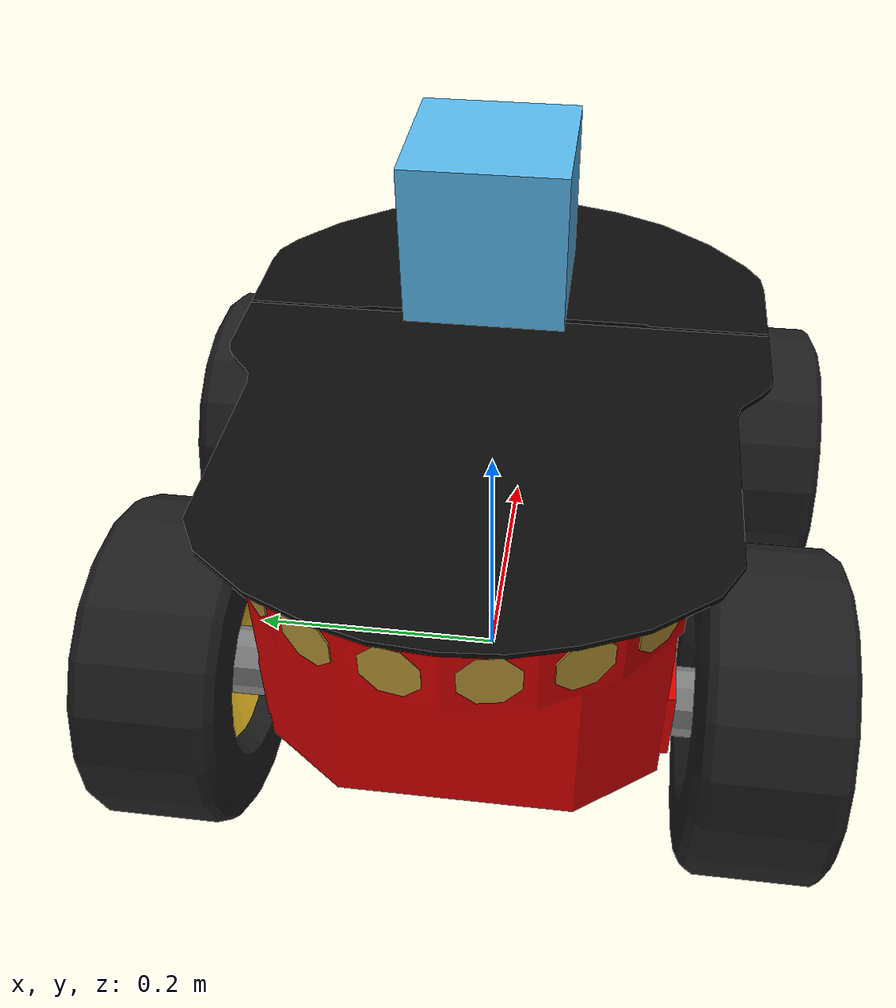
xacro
<?xml version="1.0"?>

<robot xmlns:sensor="http://playerstage.sourceforge.net/gazebo/xmlschema/#sensor"
       xmlns:controller="http://playerstage.sourceforge.net/gazebo/xmlschema/#controller"
       xmlns:interface="http://playerstage.sourceforge.net/gazebo/xmlschema/#interface"
       xmlns:xacro="http://ros.org/wiki/xacro"
name="pioneer3at">

<xacro:include filename="$(find p2os_urdf)/defs/pioneer3at_body.xacro"/>

<xacro:p3at_front suffix="left" reflect="1"/>
<xacro:p3at_front suffix="right" reflect="-1"/>
<xacro:p3at_back suffix="left" reflect="1"/>
<xacro:p3at_back suffix="right" reflect="-1"/>
<xacro:p3at_gazebo_ext/>

	<xacro:property name="cameraSize" value="0.05"/>
	<xacro:property name="cameraMass" value="0.1"/>

	<joint name="fixed_camera" type="fixed">
	  <parent link="base_link"/>
	  <child link="cam"/>
          <origin rpy="0 0 0" xyz="0.25 0 0.3"/>
	</joint>

	<link name="cam">
	  <collision>
	    <origin xyz="0 0 0" rpy="0 0 0"/>
	    <geometry>
	      <box size="${cameraSize} ${cameraSize} ${cameraSize}"/>
	    </geometry>
	  </collision>

	  <visual>
	    <origin xyz="0 0 0" rpy="0 0 0"/>
	    <geometry>
	      <box size="${cameraSize} ${cameraSize} ${cameraSize}"/>
	    </geometry>
	    <material name="blue"/>
	  </visual>

	  <inertial>
	    <mass value="${cameraMass}" />
	    <origin xyz="0 0 0" rpy="0 0 0"/>
			<inertia ixx="0.012411765597" ixy="0" ixz="0"
         iyy="0.015218160428" iyz="0" izz="0.011763977943"/>
	  </inertial>
	</link>

	<gazebo reference="cam">
	  <material>Gazebo/Blue</material>
	  <sensor type="camera" name="cam">
	    <update_rate>30.0</update_rate>
	    <camera name="head">
	      <horizontal_fov>2</horizontal_fov>
	      <vertical_fov>1</vertical_fov>
	      <image>
		<width>1200</width>
		<height>600</height>
		<format>R8G8B8</format>
	      </image>
	      <clip>
		<near>0.02</near>
		<far>300</far>
	      </clip>
	    </camera>
	    <plugin name="camera_controller" filename="libgazebo_ros_camera.so">
	      <alwaysOn>true</alwaysOn>
	      <updateRate>0.0</updateRate>
	      <cameraName>pioneer3at/camera1</cameraName>
	      <imageTopicName>image_raw</imageTopicName>
	      <cameraInfoTopicName>camera_info</cameraInfoTopicName>
	      <frameName>camera_link</frameName>
	      <hackBaseline>0.07</hackBaseline>
	      <distortionK1>0.0</distortionK1>
	      <distortionK2>0.0</distortionK2>
	      <distortionK3>0.0</distortionK3>
	      <distortionT1>0.0</distortionT1>
	      <distortionT2>0.0</distortionT2>
	    </plugin>
	  </sensor>
	 </gazebo>

	<joint name="ir_front_joint" type="fixed">
    <axis xyz="0 1 0" />
    <origin rpy="0 0 0" xyz="0 0 0.4" />
    <parent link="base_link"/>
    <child link="base_ir_front"/>
	</joint>
	<link name="base_ir_front">
	    <collision>
	      <origin xyz="0 0 0" rpy="0 0 0"/>
	      <geometry>
	        <box size="0.01 0.01 0.01"/>
	      </geometry>
	    </collision>
	    <visual>
	      <origin xyz="0 0 0" rpy="0 0 0"/>
	      <geometry>
	        <box size="0.1 0.1 0.1"/>
	      </geometry>
	    </visual>
	    <inertial>
	      <mass value="1e-5" />
	      <origin xyz="0 0 0" rpy="0 0 0"/>
	      <inertia ixx="1e-6" ixy="0" ixz="0" iyy="1e-6" iyz="0"      izz="1e-6" />
	    </inertial>
	</link>

	<gazebo reference="base_ir_front">
   <sensor type="ray" name="TeraRanger">
      <pose>0 0 0 0 0 0</pose>
      <visualize>true</visualize>
      <update_rate>50</update_rate>
      <ray>
         <scan>
            <horizontal>
               <samples>10</samples>
               <resolution>1</resolution>
               <min_angle>-0.14835</min_angle>
               <max_angle>0.14835</max_angle>
            </horizontal>
            <vertical>
               <samples>10</samples>
               <resolution>1</resolution>
               <min_angle>-0.14835</min_angle>
               <max_angle>0.14835</max_angle>
            </vertical>
         </scan>
         <range>
            <min>0.01</min>
            <max>2</max>
            <resolution>0.02</resolution>
         </range>
      </ray>
      <plugin filename="libgazebo_ros_range.so" name="gazebo_ros_range">
         <gaussianNoise>0.005</gaussianNoise>
         <alwaysOn>true</alwaysOn>
         <updateRate>50</updateRate>
         <topicName>sensor/ir_front</topicName>
         <frameName>base_ir_front</frameName>
         <radiation>INFRARED</radiation>
         <fov>0.2967</fov>
      </plugin>
   </sensor>
   </gazebo>

</robot>

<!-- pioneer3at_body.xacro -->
<robot xmlns:sensor="http://playerstage.sourceforge.net/gazebo/xmlschema/#sensor"
       xmlns:controller="http://playerstage.sourceforge.net/gazebo/xmlschema/#controller"
       xmlns:interface="http://playerstage.sourceforge.net/gazebo/xmlschema/#interface"
       xmlns:xacro="http://ros.org/wiki/xacro"
>

<!-- Chassis -->
	<link name="base_link">
		<inertial>
			<mass value="10.0"/>
			<origin xyz="0 0 0.177"/>
			<inertia ixx="0.3338" ixy="0.0" ixz="0.0"
				 iyy="0.4783" iyz="0.0"
				 izz="0.3338"/>
		</inertial>
		<visual>
			<origin xyz="0 0 0.177" rpy="0 0 0"/>
			<geometry name="pioneer_geom">
				<mesh filename="package://p2os_urdf/meshes/p3at_meshes/chassis.stl"/>
			</geometry>
			<material name="ChassisRed">
				<color rgba="0.851 0.0 0.0 1.0"/>
			</material>
		</visual>
		<collision>
			<origin xyz="0 0 0.177" rpy="0 0 0"/>
				<geometry>
					<mesh filename="package://p2os_urdf/meshes/p3at_meshes/chassis.stl"/>
				</geometry>
		</collision>
	</link>
	<gazebo reference="base_link">
		<material value="Gazebo/Red"/>
	</gazebo>

<!-- Top -->
	<link name="top_plate">
		<inertial>
			<mass value="0.1"/>
			<origin xyz="-0.025 0 -0.223"/>
			<inertia ixx="1.0" ixy="0.0" ixz="0.0"
				 iyy="1.0" iyz="0.0"
 				izz="1.0"/>
		</inertial>
		<visual>
			<origin xyz="0 0 0" rpy="0 0 0"/>
			<geometry name="pioneer_geom">
				<mesh filename="package://p2os_urdf/meshes/p3at_meshes/top.stl"/>
			</geometry>
			<material name="TopBlack">
					<color rgba="0.038 0.038 0.038 1.0"/>
			</material>
		</visual>
		<collision>
			<origin xyz="0 0 0" rpy="0 0 0"/>
			<geometry>
				<box size="0 0 0"/>
			</geometry>
		</collision>
	</link>
	<gazebo reference="top_plate">
		<material value="Gazebo/Black"/>
	</gazebo>

	<joint name="base_top_joint" type="fixed">
		<origin xyz="0.003 0 0.274" rpy="0 0 0"/>
		<parent link="base_link"/>
		<child link="top_plate"/>
	</joint>
<!-- Front + Back Sonar -->
	<link name="front_sonar">
		<inertial>
			<mass value="0.1"/>
			<origin xyz="0 0 0"/>
			<inertia ixx="1.0" ixy="0.0" ixz="0.0"
				 iyy="1.0" iyz="0.0" izz="1.0"/>
		</inertial>
		<visual>
			<origin xyz="0 0 0" rpy="0 0 0"/>
			<geometry name="pioneer_geom">
				<mesh filename="package://p2os_urdf/meshes/p3at_meshes/front_sonar.stl"/>
			</geometry>
			<material name="SonarYellow">
				<color rgba="0.715 0.583 0.210 1.0"/>
			</material>
		</visual>
		<collision>
			<origin xyz="0 0 0" rpy="0 0 0"/>
			<geometry>
				<box size="0 0 0"/>
			</geometry>
		</collision>
	</link>
	<gazebo reference="front_sonar">
		<material value="Gazebo/Yellow"/>
	</gazebo>

	<joint name="base_front_joint" type="fixed">
		<origin xyz="0.193 0 0.25" rpy="0 0 0"/>
		<parent link="base_link"/>
		<child link="front_sonar"/>
	</joint>

	<link name="back_sonar">
		<inertial>
			<mass value="0.1"/>
			<origin xyz="0 0 0"/>
			<inertia ixx="1.0" ixy="0.0" ixz="0.0"
				 iyy="1.0" iyz="0.0" izz="1.0"/>
		</inertial>
		<visual>
			<origin xyz="0 0 0" rpy="0 0 0"/>
			<geometry name="pioneer_geom">
				<mesh filename="package://p2os_urdf/meshes/p3at_meshes/back_sonar.stl"/>
			</geometry>
			<material name="SonarYellow">
				<color rgba="0.715 0.583 0.210 1.0"/>
			</material>
		</visual>
		<collision>
			<origin xyz="0 0 0" rpy="0 0 0"/>
			<geometry>
				<box size="0 0 0"/>
			</geometry>
		</collision>
	</link>
	<gazebo reference="back_sonar">
		<material value="Gazebo/Yellow"/>
	</gazebo>

	<joint name="base_back_joint" type="fixed">
		<origin xyz="-0.187 0 0.247" rpy="0 0 0"/>
		<parent link="base_link"/>
		<child link="back_sonar"/>
	</joint>

<!-- Front Axles + Wheels + Hubcaps -->
<xacro:macro name="p3at_front" params="suffix reflect">
	<link name="p3at_front_${suffix}_axle">
		<inertial>
			<mass value="0.1"/>
			<origin xyz="0 0 0"/>
			<inertia ixx="1.0" ixy="0.0" ixz="0.0"
				 iyy="1.0" iyz="0.0" izz="1.0"/>
  	 	</inertial>
	<visual>
		<origin xyz="0 0 0" rpy="0 0 0"/>
		<geometry name="pioneer_geom">
			<mesh filename="package://p2os_urdf/meshes/p3at_meshes/axle.stl"/>
		</geometry>
		<material name="AxleGrey">
			<color rgba="0.5 0.5 0.5 1"/>
		</material>
	</visual>
	<collision>
		<origin xyz="0 0 0" rpy="0 0 0"/>
		<geometry>
			<box size="0 0 0"/>
		</geometry>
	</collision>
	</link>
	<gazebo reference="p3at_front_${suffix}_axle">
		<material value="Gazebo/Grey"/>
	</gazebo>

	<joint name="base_front_${suffix}_axle_joint" type="fixed">
		<origin xyz="0.135 ${reflect*0.156} 0.111" rpy="0 0 0"/>
		<parent link="base_link"/>
		<child link="p3at_front_${suffix}_axle"/>
	</joint>

	<link name="p3at_front_${suffix}_hub">
		<inertial>
			<mass value="0.1"/>
			<origin xyz="0 0 0"/>
			<inertia ixx="1.0" ixy="0.0" ixz="0.0"
				 iyy="1.0" iyz="0.0" izz="1.0"/>
  	 	</inertial>
	<visual>
		<origin xyz="0 0 0" rpy="0 0 0"/>
		<geometry name="pioneer_geom">
			<mesh filename="package://p2os_urdf/meshes/p3at_meshes/${suffix}_hubcap.stl"/>
		</geometry>
		<material name="HubcapYellow">
			<color rgba="1.0 0.811 0.151 1.0"/>
		</material>
	</visual>
	<collision>
		<origin xyz="0 0 0" rpy="0 0 0"/>
		<geometry>
			<box size="0 0 0"/>
		</geometry>
	</collision>
	</link>
	<gazebo reference="p3at_front_${suffix}_hub">
		<material value="Gazebo/Yellow"/>
	</gazebo>

	<joint name="base_front_${suffix}_hub_joint" type="fixed">
		<origin xyz="0 ${reflect*0.041} 0" rpy="0 0 0"/>
		<parent link="p3at_front_${suffix}_axle"/>
		<child link="p3at_front_${suffix}_hub"/>
	</joint>

	<link name="p3at_front_${suffix}_wheel">
		<inertial>
			<mass value="0.5"/>
			<origin xyz="0 0 0"/>
			<inertia ixx="0.012411765597" ixy="0" ixz="0"
         iyy="0.015218160428" iyz="0" izz="0.011763977943"/>
      </inertial>
	<visual>
		<origin xyz="0 0 0" rpy="0 0 0"/>
		<geometry name="pioneer_geom">
			<mesh filename="package://p2os_urdf/meshes/p3at_meshes/wheel.stl"/>
		</geometry>
		<material name="WheelBlack">
			<color rgba="0.117 0.117 0.117 1"/>
		</material>
	</visual>
	<collision>
		<origin xyz="0 0 0" rpy="${-3.1415927/2} 0 0"/>
		<geometry>
	    <!--mesh filename="package://p2os_urdf/meshes/p3at_meshes/wheel.stl"/-->
	    <cylinder radius="0.111" length="0.075"/>
		</geometry>
	</collision>
	</link>
	<gazebo reference="p3at_front_${suffix}_wheel">
		<material value="Gazebo/Black"/>
	</gazebo>

	<joint name="p3at_front_${suffix}_wheel_joint" type="continuous">
  	<axis xyz="0 1 0"/>
    <anchor xyz="0 0 0"/>
    <limit effort="100" velocity="100" />
    <joint_properties damping="0.7"/>
		<origin xyz="0 0 0" rpy="0 0 0"/>
		<parent link="p3at_front_${suffix}_hub"/>
		<child link="p3at_front_${suffix}_wheel"/>
	</joint>
</xacro:macro>
<!-- Back Axles + Wheels + Hubcaps -->
<xacro:macro name="p3at_back" params="suffix reflect">
	<link name="p3at_back_${suffix}_axle">
		<inertial>
			<mass value="0.1"/>
			<origin xyz="0 0 0"/>
			<inertia ixx="1.0" ixy="0.0" ixz="0.0"
				 iyy="1.0" iyz="0.0" izz="1.0"/>
  	 	</inertial>
	<visual>
		<origin xyz="0 0 0" rpy="0 0 0"/>
		<geometry name="pioneer_geom">
			<mesh filename="package://p2os_urdf/meshes/p3at_meshes/axle.stl"/>
		</geometry>
		<material name="AxleGrey">
			<color rgba="0.5 0.5 0.5 1"/>
		</material>
	</visual>
	<collision>
		<origin xyz="0 0 0" rpy="0 0 0"/>
		<geometry>
			<mesh filename="package://p2os_urdf/meshes/p3at_meshes/axle.stl"/>
		</geometry>
	</collision>
	</link>
	<gazebo reference="p3at_back_${suffix}_axle">
		<material value="Gazebo/Grey"/>
	</gazebo>

	<joint name="bp3at_back_${suffix}_axle_joint" type="fixed">
		<origin xyz="-0.134 ${reflect*0.156} 0.111" rpy="0 0 0"/>
		<parent link="base_link"/>
		<child link="p3at_back_${suffix}_axle"/>
	</joint>

	<link name="p3at_back_${suffix}_hub">
		<inertial>
			<mass value="0.1"/>
			<origin xyz="0 0 0"/>
			<inertia ixx="1.0" ixy="0.0" ixz="0.0"
				 iyy="1.0" iyz="0.0" izz="1.0"/>
  	 	</inertial>
	<visual>
		<origin xyz="0 0 0" rpy="0 0 0"/>
		<geometry name="pioneer_geom">
			<mesh filename="package://p2os_urdf/meshes/p3at_meshes/${suffix}_hubcap.stl"/>
		</geometry>
		<material name="HubcapYellow"/>
	</visual>
	<collision>
		<origin xyz="0 0 0" rpy="0 0 0"/>
		<geometry>
			<mesh filename="package://p2os_urdf/meshes/p3at_meshes/${suffix}_hubcap.stl"/>
		</geometry>
	</collision>
	</link>
	<gazebo reference="p3at_back_${suffix}_hub">
		<material value="Gazebo/Yellow"/>
	</gazebo>

	<joint name="p3at_back_${suffix}_hub_joint" type="fixed">
		<origin xyz="-0 ${reflect*0.041} 0" rpy="0 0 0"/>
		<parent link="p3at_back_${suffix}_axle"/>
		<child link="p3at_back_${suffix}_hub"/>
	</joint>

	<link name="p3at_back_${suffix}_wheel">
		<inertial>
			<mass value="0.5"/>
			<origin xyz="0 0 0"/>
			<inertia ixx="0.012411765597" ixy="0" ixz="0"
         iyy="0.015218160428" iyz="0" izz="0.011763977943"/>
      </inertial>
	<visual>
		<origin xyz="0 0 0" rpy="0 0 0"/>
		<geometry name="pioneer_geom">
			<mesh filename="package://p2os_urdf/meshes/p3at_meshes/wheel.stl"/>
		</geometry>
		<material name="WheelBlack"/>
	</visual>
	<collision>
		<origin xyz="0 0 0" rpy="${-3.1415927/2} 0 0"/>
		<geometry>
	    <!--mesh filename="package://p2os_urdf/meshes/p3at_meshes/wheel.stl"/-->
	    <cylinder radius="0.111" length="0.075"/>
		</geometry>
	</collision>
	</link>
	<gazebo reference="p3at_back_${suffix}_wheel">
		<material value="Gazebo/Black"/>
	</gazebo>

	<joint name="p3at_back_${suffix}_wheel_joint" type="continuous">
	  <axis xyz="0 1 0"/>
    <anchor xyz="0 0 0"/>
    <limit effort="100" velocity="100" />
    <joint_properties damping="0.7"/>
		<origin xyz="0 0 0" rpy="0 0 0"/>
		<parent link="p3at_back_${suffix}_hub"/>
		<child link="p3at_back_${suffix}_wheel"/>
	</joint>

  <gazebo reference="p3at_back_${suffix}_wheel">
    <kp>1000000.0</kp> <!-- kp and kd for rubber -->
    <kd>100.0</kd>
    <mu1>10.0</mu1>
    <mu2>1.0</mu2>
    <fdir1>0 1 0</fdir1> <!-- is this correct? -->
    <maxVel>1.0</maxVel>
    <minDepth>0.00</minDepth>
  </gazebo>

  <gazebo reference="p3at_front_${suffix}_wheel">
    <kp>1000000.0</kp> <!-- kp and kd for rubber -->
    <kd>100.0</kd>
    <mu1>10.0</mu1>
    <mu2>1.0</mu2>
    <fdir1>0 1 0</fdir1> <!-- is this correct? -->
    <maxVel>1.0</maxVel>
    <minDepth>0.00</minDepth>
  </gazebo>

</xacro:macro>

<xacro:macro name="p3at_gazebo_ext">

<gazebo>
  <plugin name="skid_steer_drive_controller" filename="libgazebo_ros_skid_steer_drive.so">
    <updateRate>100.0</updateRate>
    <robotNamespace>/</robotNamespace>
    <leftFrontJoint>p3at_front_left_wheel_joint</leftFrontJoint>
    <rightFrontJoint>p3at_front_right_wheel_joint</rightFrontJoint>
    <leftRearJoint>p3at_back_left_wheel_joint</leftRearJoint>
    <rightRearJoint>p3at_back_right_wheel_joint</rightRearJoint>
    <wheelSeparation>0.4</wheelSeparation>
    <wheelDiameter>0.215</wheelDiameter>
    <robotBaseFrame>base_link</robotBaseFrame>
    <torque>200</torque>
    <topicName>cmd_vel</topicName>
  </plugin>
</gazebo>

</xacro:macro>

</robot>
